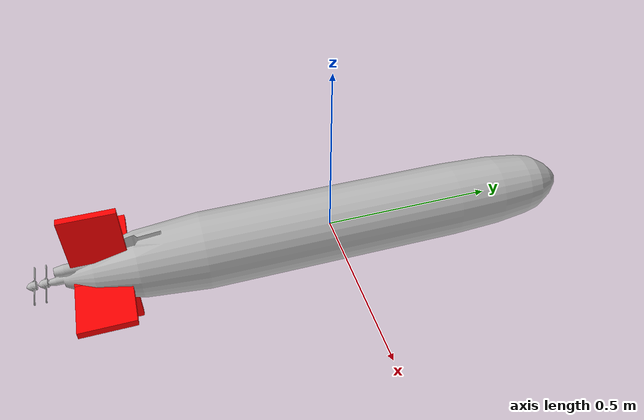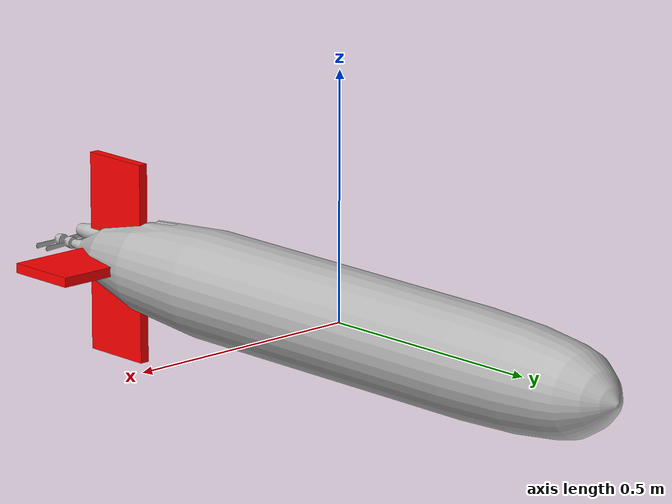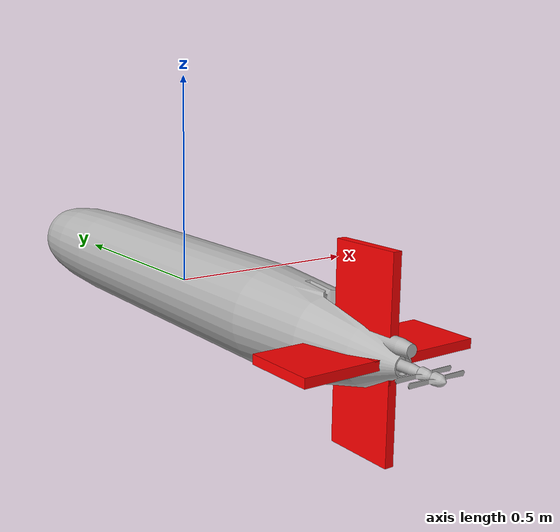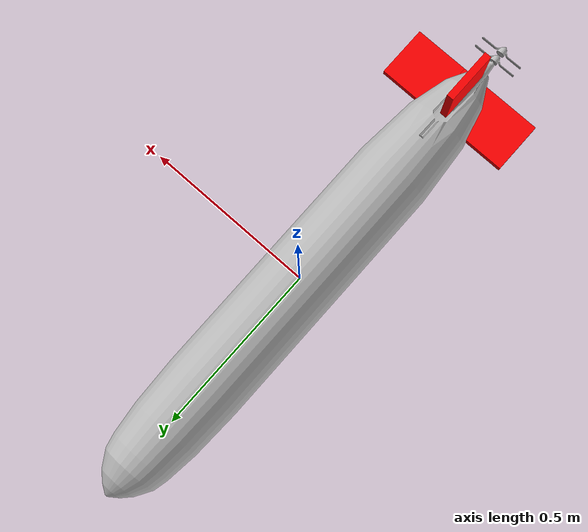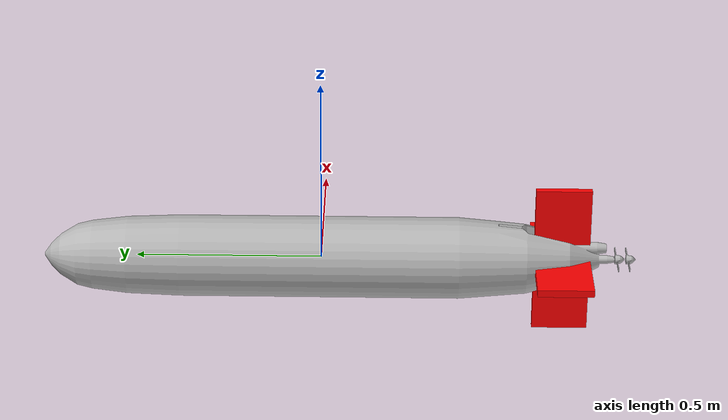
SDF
<?xml version="1.0"?>
<sdf version="1.7">
  <model name="glider_slocum">

    <static>false</static>
    <link name="base_link">
      <inertial>
        <pose>0 0.00354 -0.02 0 0 0</pose>
        <mass>73.498</mass>
        <inertia>
          <ixx>13.193856</ixx>
          <ixy>0</ixy>
          <ixz>0</ixz>
          <iyy>0.418962</iyy>
          <iyz>0</iyz>
          <izz>13.193856</izz>
        </inertia>
      </inertial>

      <visual name="base_link_visual">
        <pose>0 0 0 0 0 0</pose>
        <geometry>
          <mesh>
            <scale>0.5 0.5 0.5</scale>
            <uri>model://meshes/glider_slocum/Slocum-Torpedo.dae</uri>
          </mesh>
        </geometry>
      </visual>

      <collision name="base_link_collision">
        <pose>0 0 0 0 0 0</pose>
        <geometry>
          <box>
            <size>0.22 1.5 0.22</size>
          </box>
        </geometry>
      </collision>
    </link>

    <link name="imu_link">
      <inertial>
        <pose>0 0 0 0 0 0</pose>
        <mass>0.015</mass>
        <inertia>
          <ixx>0.00001</ixx>
          <ixy>0.0</ixy>
          <ixz>0.0</ixz>
          <iyy>0.00001</iyy>
          <iyz>0.0</iyz>
          <izz>0.00001</izz>
        </inertia>
      </inertial>
      <sensor name="imu_sensor" type="imu">
        <always_on>true</always_on>
        <update_rate>50.0</update_rate>
      </sensor>
    </link>

    <joint name="imu_joint" type="fixed">
      <pose>0 0 0 0 0 0</pose>
      <parent>base_link</parent>
      <child>imu_link</child>
    </joint>

    <link name='battery_link'>
      <inertial>
        <pose>0 0 0 0 0 0</pose>
        <mass>0.001</mass>
        <inertia>
          <ixx>1e-05</ixx>
          <ixy>0</ixy>
          <ixz>0</ixz>
          <iyy>1e-05</iyy>
          <iyz>0</iyz>
          <izz>1e-05</izz>
        </inertia>
      </inertial>
      <battery name='battery'>
        <voltage>4.2</voltage>
      </battery>
    </link>

    <joint name='battery_joint' type='fixed'>
      <pose>0 0 0 0 0 0</pose>
      <parent>base_link</parent>
      <child>battery_link</child>
    </joint>

    <plugin
      filename="gz-sim-linearbatteryplugin-system"
      name="gz::sim::systems::LinearBatteryPlugin">
      <battery_name>battery</battery_name>
      <voltage>4.2</voltage>
      <open_circuit_voltage_constant_coef>3.7</open_circuit_voltage_constant_coef>
      <open_circuit_voltage_linear_coef>-3.1424</open_circuit_voltage_linear_coef>
      <initial_charge>4.32</initial_charge>
      <capacity>4.8</capacity>
      <resistance>0.002</resistance>
      <smooth_current_tau>1.9499</smooth_current_tau>
      <enable_recharge>false</enable_recharge>
      <power_load>10</power_load>
      <start_on_motion>true</start_on_motion>
    </plugin>

    <link name="navsat_link">
      <inertial>
        <pose>0 0 0 0 0 0</pose>
        <mass>0.001</mass>
        <inertia>
          <ixx>0.00001</ixx>
          <ixy>0.0</ixy>
          <ixz>0.0</ixz>
          <iyy>0.00001</iyy>
          <iyz>0.0</iyz>
          <izz>0.00001</izz>
        </inertia>
      </inertial>

      <sensor name="navsat_sensor" type="navsat">
        <always_on>true</always_on>
        <update_rate>30.0</update_rate>
        <topic>/model/glider_slocum/navsat</topic>
      </sensor>
    </link>

    <joint name="navsat_joint" type="fixed">
      <pose>0 0 0 0 0 0</pose>
      <parent>base_link</parent>
      <child>navsat_link</child>
    </joint>

    <!-- 이 코드 영역(시작)은 기존 프로펠러임  -->

    <link name="propeller_link">
      <visual name="propeller_link_visual">
        <pose>0 0 0 0 0 0</pose>
        <geometry>
          <mesh>
            <scale>0.5 0.5 0.5</scale>
            <uri>model://meshes/glider_slocum/Slocum-Glider-Propeller.dae</uri>
          </mesh>
        </geometry>
      </visual>
      <inertial>
        <pose>0 0 0 0 0 0</pose>
        <inertia>
          <ixx>0.05</ixx>
          <ixy>0</ixy>
          <ixz>0</ixz>
          <iyy>0.1</iyy>
          <iyz>0</iyz>
          <izz>0.05</izz>
        </inertia>
        <mass>0.25</mass>
      </inertial>
    </link>

    <joint name="propeller_joint" type="revolute">
      <pose>0 0 0 0 0 0</pose>
      <parent>base_link</parent>
      <child>propeller_link</child>
      <axis>
        <xyz>0 1 0</xyz>
      </axis>
    </joint>

    <plugin
      filename="gz-sim-thruster-system"
      name="gz::sim::systems::Thruster">
      <namespace>glider_slocum</namespace>
      <joint_name>propeller_joint</joint_name>
      <fluid_density>1025.0</fluid_density>
      <thrust_coefficient>0.02</thrust_coefficient>
      <propeller_diameter>0.1</propeller_diameter>
      <velocity_control>false</velocity_control>
      <use_angvel_cmd>false</use_angvel_cmd>
    </plugin>

    <!-- 이 코드 영역(끝)은 기존 프로펠러임  -->

    <!-- 이 코드 영역(시작)은 추가한 뒤쪽(y -0.03m) 프로펠러임  -->

    <link name="propeller_rear_link">
      <visual name="propeller_rear_visual">
        <!-- 기존 프로펠러보다 Y축으로 0.03 m 후방 -->
        <pose>0 -0.03 0 0 0 0</pose>
        <geometry>
          <mesh>
            <scale>0.5 0.5 0.5</scale>
            <uri>model://meshes/glider_slocum/Slocum-Glider-Propeller.dae</uri>
          </mesh>
        </geometry>
      </visual>

      <inertial>
        <pose>0 0 0 0 0 0</pose>
        <inertia>
          <ixx>0.05</ixx>
          <ixy>0</ixy>
          <ixz>0</ixz>
          <iyy>0.1</iyy>
          <iyz>0</iyz>
          <izz>0.05</izz>
        </inertia>
        <mass>0.25</mass>
      </inertial>
    </link>

    <joint name="propeller_rear_joint" type="revolute">
      <pose>0 0 0 0 0 0</pose>
      <parent>base_link</parent>
      <child>propeller_rear_link</child>
      <axis>
        <xyz>0 1 0</xyz>
      </axis>
    </joint>

    <plugin
      filename="gz-sim-thruster-system"
      name="gz::sim::systems::Thruster">
      <namespace>glider_slocum</namespace>
      <joint_name>propeller_rear_joint</joint_name>
      <fluid_density>1025.0</fluid_density>
      <thrust_coefficient>-0.02</thrust_coefficient>
      <propeller_diameter>0.1</propeller_diameter>
      <velocity_control>false</velocity_control>
      <use_angvel_cmd>false</use_angvel_cmd>
    </plugin>

    <!-- 이 코드 영역(시작)은 추가한 뒤쪽(y -0.03m) 프로펠러임  -->

    <!-- [1단계] 핀 링크 정의 (Y축 기준 꼬리에 부착) -->
    <link name="fin_top">
      <pose relative_to="base_link">0 -0.65 0.08 0 0 0</pose>
      <inertial>
        <mass>0.1</mass>
        <inertia>
          <ixx>0.001</ixx><ixy>0</ixy><ixz>0</ixz>
          <iyy>0.001</iyy><iyz>0</iyz><izz>0.001</izz>
        </inertia>
      </inertial>
      <visual name="fin_top_visual">
        <geometry><box><size>0.02 0.15 0.25</size></box></geometry>
        <material><ambient>1 0 0 1</ambient><diffuse>1 0 0 1</diffuse></material>
      </visual>
    </link>

    <link name="fin_bottom">
      <pose relative_to="base_link">0 -0.65 -0.08 0 0 0</pose>
      <inertial>
        <mass>0.1</mass>
        <inertia>
          <ixx>0.001</ixx><ixy>0</ixy><ixz>0</ixz>
          <iyy>0.001</iyy><iyz>0</iyz><izz>0.001</izz>
        </inertia>
      </inertial>
      <visual name="fin_bottom_visual">
        <geometry><box><size>0.02 0.15 0.25</size></box></geometry>
        <material><ambient>1 0 0 1</ambient><diffuse>1 0 0 1</diffuse></material>
      </visual>
    </link>

    <link name="fin_left">
      <pose relative_to="base_link">-0.08 -0.65 0 0 0 0</pose>
      <inertial>
        <mass>0.1</mass>
        <inertia>
          <ixx>0.001</ixx><ixy>0</ixy><ixz>0</ixz>
          <iyy>0.001</iyy><iyz>0</iyz><izz>0.001</izz>
        </inertia>
      </inertial>
      <visual name="fin_left_visual">
        <geometry><box><size>0.25 0.15 0.02</size></box></geometry>
        <material><ambient>1 0 0 1</ambient><diffuse>1 0 0 1</diffuse></material>
      </visual>
    </link>

    <link name="fin_right">
      <pose relative_to="base_link">0.08 -0.65 0 0 0 0</pose>
      <inertial>
        <mass>0.1</mass>
        <inertia>
          <ixx>0.001</ixx><ixy>0</ixy><ixz>0</ixz>
          <iyy>0.001</iyy><iyz>0</iyz><izz>0.001</izz>
        </inertia>
      </inertial>
      <visual name="fin_right_visual">
        <geometry><box><size>0.25 0.15 0.02</size></box></geometry>
        <material><ambient>1 0 0 1</ambient><diffuse>1 0 0 1</diffuse></material>
      </visual>
    </link>

    <!-- [2단계] 핀 조인트 (전진 방향 Y축에 맞춘 회전축) -->
    <joint name="fin_top_joint" type="revolute">
      <parent>base_link</parent>
      <child>fin_top</child>
      <axis>
        <xyz>0 0 1</xyz> <!-- Z축 회전 (좌우 러더 역할) -->
        <limit><lower>-0.5</lower><upper>0.5</upper><effort>10</effort></limit>
        <dynamics><damping>0.1</damping><friction>0.1</friction></dynamics>
      </axis>
    </joint>

    <joint name="fin_bottom_joint" type="revolute">
      <parent>base_link</parent>
      <child>fin_bottom</child>
      <axis>
        <xyz>0 0 1</xyz>
        <limit><lower>-0.5</lower><upper>0.5</upper><effort>10</effort></limit>
        <dynamics><damping>0.1</damping><friction>0.1</friction></dynamics>
      </axis>
    </joint>

    <joint name="fin_left_joint" type="revolute">
      <parent>base_link</parent>
      <child>fin_left</child>
      <axis>
        <xyz>1 0 0</xyz> <!-- X축 회전 (상하 엘리베이터 역할) -->
        <limit><lower>-0.5</lower><upper>0.5</upper><effort>10</effort></limit>
        <dynamics><damping>0.1</damping><friction>0.1</friction></dynamics>
      </axis>
    </joint>

    <joint name="fin_right_joint" type="revolute">
      <parent>base_link</parent>
      <child>fin_right</child>
      <axis>
        <xyz>1 0 0</xyz>
        <limit><lower>-0.5</lower><upper>0.5</upper><effort>10</effort></limit>
        <dynamics><damping>0.1</damping><friction>0.1</friction></dynamics>
      </axis>
    </joint>

    <!-- [3단계] SITL 제어 인터페이스 -->
    <plugin filename="gz-sim-joint-position-controller-system" name="gz::sim::systems::JointPositionController">
      <joint_name>fin_top_joint</joint_name>
      <topic>/model/glider_slocum/joint/fin_top/cmd_pos</topic>
      <p_gain>5.0</p_gain><i_gain>0.0</i_gain><d_gain>0.5</d_gain>
    </plugin>
    <plugin filename="gz-sim-joint-position-controller-system" name="gz::sim::systems::JointPositionController">
      <joint_name>fin_bottom_joint</joint_name>
      <topic>/model/glider_slocum/joint/fin_bottom/cmd_pos</topic>
      <p_gain>5.0</p_gain><i_gain>0.0</i_gain><d_gain>0.5</d_gain>
    </plugin>
    <plugin filename="gz-sim-joint-position-controller-system" name="gz::sim::systems::JointPositionController">
      <joint_name>fin_left_joint</joint_name>
      <topic>/model/glider_slocum/joint/fin_left/cmd_pos</topic>
      <p_gain>5.0</p_gain><i_gain>0.0</i_gain><d_gain>0.5</d_gain>
    </plugin>
    <plugin filename="gz-sim-joint-position-controller-system" name="gz::sim::systems::JointPositionController">
      <joint_name>fin_right_joint</joint_name>
      <topic>/model/glider_slocum/joint/fin_right/cmd_pos</topic>
      <p_gain>5.0</p_gain><i_gain>0.0</i_gain><d_gain>0.5</d_gain>
    </plugin>

    <!-- [4단계] Fin Lift & Drag (전진 방향 Y축에 맞춘 양력 방향) -->
    <!-- Fin Lift & Drag                                            -->
    <!-- Forward +Y / Right +X / Up +Z                              -->

    <!-- Left Fin: ±Z Lift → X축 Pitch 모멘트 -->
    <plugin
      filename="gz-sim-lift-drag-system"
      name="gz::sim::systems::LiftDrag">
      <link_name>fin_left</link_name>

      <air_density>1025.0</air_density>
      <a0>0.0</a0>

      <cla>1.3</cla>
      <cda>0.2</cda>

      <alpha_stall>0.26</alpha_stall>
      <cla_stall>-0.26</cla_stall>
      <cda_stall>0.9</cda_stall>

      <area>0.014</area>
      <cp>0 0 0</cp>

      <forward>0 1 0</forward>
      <upward>0 0 1</upward>
    </plugin>

    <!-- Right Fin: ±Z Lift → X축 Pitch 모멘트 -->
    <plugin
      filename="gz-sim-lift-drag-system"
      name="gz::sim::systems::LiftDrag">
      <link_name>fin_right</link_name>

      <air_density>1025.0</air_density>
      <a0>0.0</a0>

      <cla>1.3</cla>
      <cda>0.2</cda>

      <alpha_stall>0.26</alpha_stall>
      <cla_stall>-0.26</cla_stall>
      <cda_stall>0.9</cda_stall>

      <area>0.014</area>
      <cp>0 0 0</cp>

      <forward>0 1 0</forward>
      <upward>0 0 1</upward>
    </plugin>

    <!-- Top Fin: ±X Lift → Z축 Yaw 모멘트 -->
    <plugin
      filename="gz-sim-lift-drag-system"
      name="gz::sim::systems::LiftDrag">
      <link_name>fin_top</link_name>

      <air_density>1025.0</air_density>
      <a0>0.0</a0>

      <cla>1.3</cla>
      <cda>0.2</cda>

      <alpha_stall>0.26</alpha_stall>
      <cla_stall>-0.26</cla_stall>
      <cda_stall>0.9</cda_stall>

      <area>0.014</area>
      <cp>0 0 0</cp>

      <forward>0 1 0</forward>
      <upward>1 0 0</upward>
    </plugin>

    <!-- Bottom Fin: ±X Lift → Z축 Yaw 모멘트 -->
    <plugin
      filename="gz-sim-lift-drag-system"
      name="gz::sim::systems::LiftDrag">
      <link_name>fin_bottom</link_name>

      <air_density>1025.0</air_density>
      <a0>0.0</a0>

      <cla>1.3</cla>
      <cda>0.2</cda>

      <alpha_stall>0.26</alpha_stall>
      <cla_stall>-0.26</cla_stall>
      <cda_stall>0.9</cda_stall>

      <area>0.014</area>
      <cp>0 0 0</cp>

      <forward>0 1 0</forward>
      <upward>1 0 0</upward>
    </plugin>

    <!-- 덮어쓰기 영역 끝.                                         -->

    <plugin
      filename="gz-sim-hydrodynamics-system"
      name="gz::sim::systems::Hydrodynamics">
      <link_name>base_link</link_name>
      <water_density>1025.0</water_density>
      <!-- Added mass -->
      <xDotU>0</xDotU>
      <yDotV>0</yDotV>
      <zDotW>0</zDotW>
      <kDotP>0</kDotP>
      <mDotQ>0</mDotQ>
      <nDotR>0</nDotR>

      <!-- Linear Drag Coefficients -->
      <!-- diagonal terms -->
      <xU>-162</xU>
      <yV>-8</yV>
      <zW>-108</zW>
      <kP>-13</kP>
      <mQ>-20</mQ>
      <nR>-32</nR>
      <!-- cross terms -->

      <!-- Quadratic Drag Coefficients -->
      <xUabsU>0</xUabsU>
      <yVabsV>-12.474</yVabsV>
      <zWabsW>0</zWabsW>
      <kPabsP>0</kPabsP>
      <mQabsQ>0</mQabsQ>
      <nRabsR>0</nRabsR>
    </plugin>

    <plugin
      filename="gz-sim-navsat-system"
      name="gz::sim::systems::NavSat">
    </plugin>

    <plugin
      filename="gz-sim-odometry-publisher-system"
      name="gz::sim::systems::OdometryPublisher">
      <odom_frame>map</odom_frame>
      <robot_base_frame>base_link</robot_base_frame>
      <dimensions>3</dimensions>
      <odom_publish_frequency>100</odom_publish_frequency>
    </plugin>

  </model>
</sdf>
